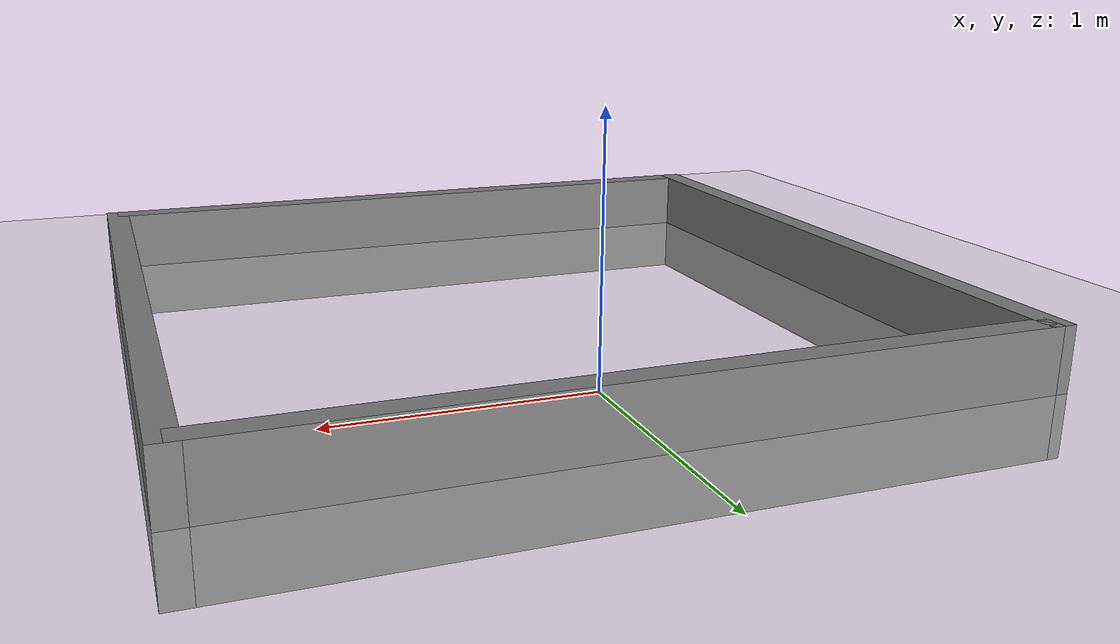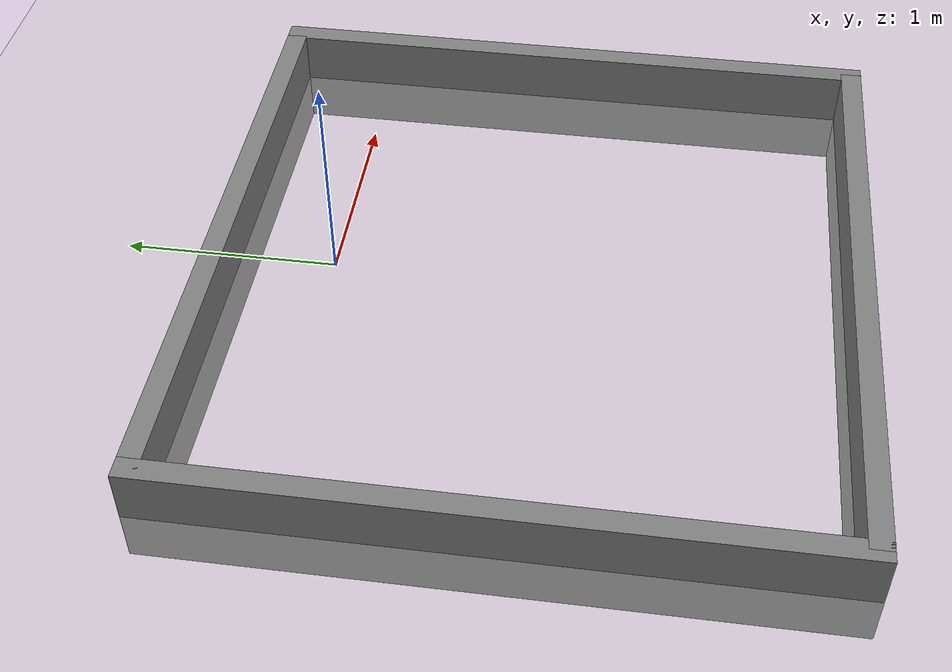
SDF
<?xml version="1.0" ?>
<sdf version="1.6">
  <world name="default">

    <!-- A light source -->
    <include>
      <uri>model://sun</uri>
    </include>

    <!-- Ground plane -->
    <include>
      <uri>model://ground_plane</uri>
    </include>

    <model name="Sqaure">
      <static>true</static>
      <pose>0 0.5 0 0 0 0</pose>

      <!-- First section of the L -->
      <link name="wall_section_1">
        <collision name="collision_1">
          <geometry>
            <box>
              <size>3 0.1 0.5</size> <!-- Depth=3m, Width=0.1m, Height=0.5m -->
            </box>
          </geometry>
        </collision>
        <visual name="visual_1">
          <geometry>
            <box>
              <size>3 0.1 0.5</size> <!-- Same size as collision -->
            </box>
          </geometry>
           <material>
            <ambient>0.5 0.5 0.5 1</ambient>
            <diffuse>0.5 0.5 0.5 1</diffuse>
            <specular>0.1 0.1 0.1 1</specular>
          </material>
        </visual>
      </link>

      <link name="wall_section_3">
        <pose>0 -2.9 0 0 0 0</pose>
        <collision name="collision_3">
          <geometry>
            <box>
              <size>3 0.1 0.5</size>
            </box>
          </geometry>
        </collision>
        <visual name="visual_3">
          <geometry>
            <box>
              <size>3 0.1 0.5</size>
            </box>
          </geometry>
           <material>
            <ambient>0.5 0.5 0.5 1</ambient>
            <diffuse>0.5 0.5 0.5 1</diffuse>
            <specular>0.1 0.1 0.1 1</specular>
          </material>
        </visual>
      </link>

      <!-- Second section of the L, rotated to form the L shape -->
      <link name="wall_section_2">
        <pose>-1.5 -1.45 0 0 0 1.57</pose> <!-- Position it at the end of the first wall, rotated 90 degrees -->
        <collision name="collision_2">
          <geometry>
            <box>
              <size>3 0.1 0.5</size> <!-- Same size as first section -->
            </box>
          </geometry>
        </collision>
        <visual name="visual_2">
          <geometry>
            <box>
              <size>3 0.1 0.5</size>
            </box>
          </geometry>
           <material>
            <ambient>0.5 0.5 0.5 1</ambient>
            <diffuse>0.5 0.5 0.5 1</diffuse>
            <specular>0.1 0.1 0.1 1</specular>
          </material>
        </visual>
    </link>

    <link name="wall_section_4">
        <pose>1.5 -1.45 0 0 0 1.57</pose>
        <collision name="collision_4">
          <geometry>
            <box>
              <size>3 0.1 0.5</size>
            </box>
          </geometry>
        </collision>
        <visual name="visual_2">
          <geometry>
            <box>
              <size>3 0.1 0.5</size>
            </box>
          </geometry>
           <material>
            <ambient>0.5 0.5 0.5 1</ambient>
            <diffuse>0.5 0.5 0.5 1</diffuse>
            <specular>0.1 0.1 0.1 1</specular>
          </material>
        </visual>
      </link>
    </model>

  </world>
</sdf>
